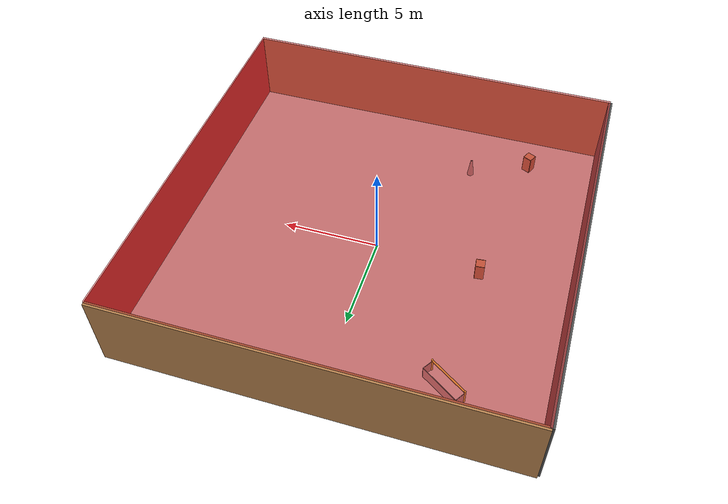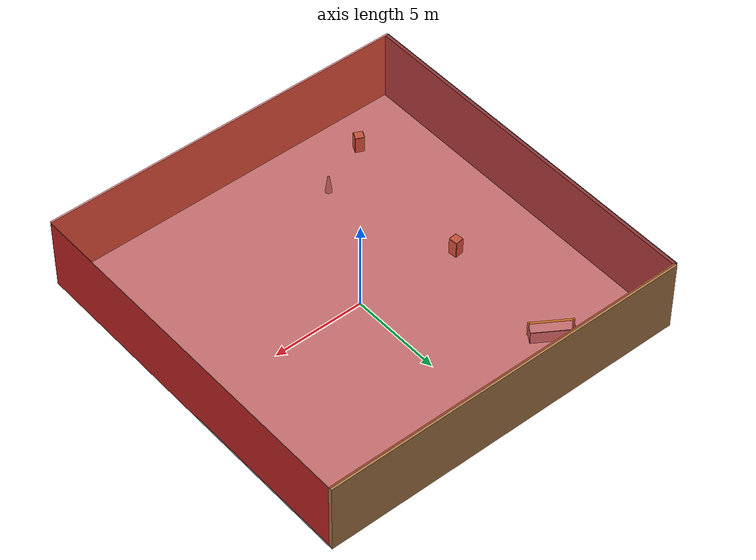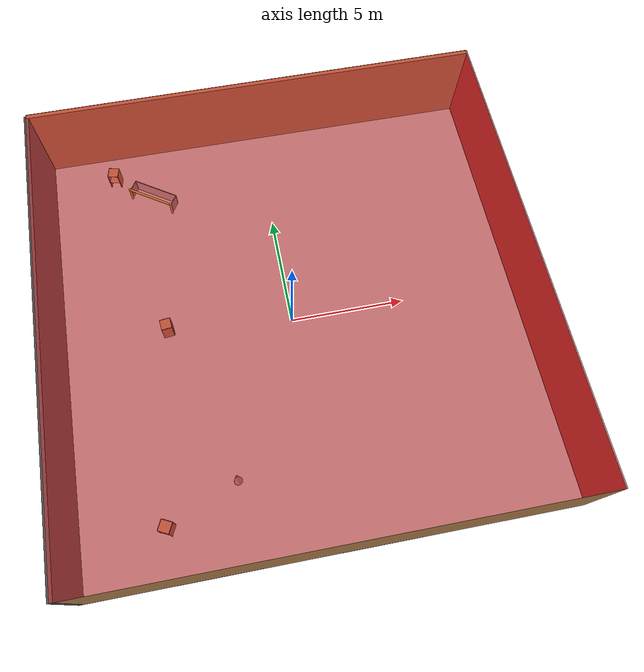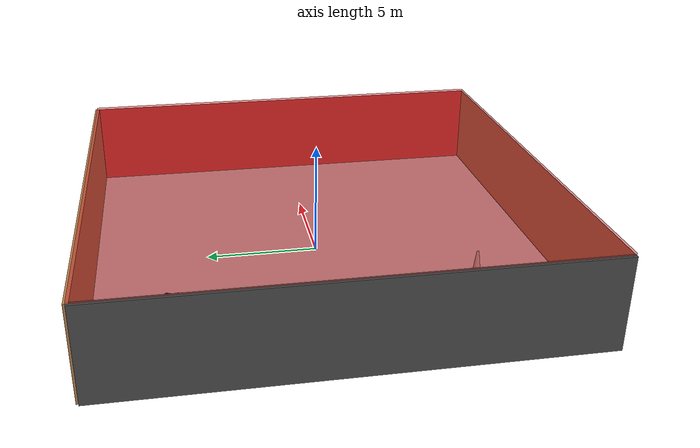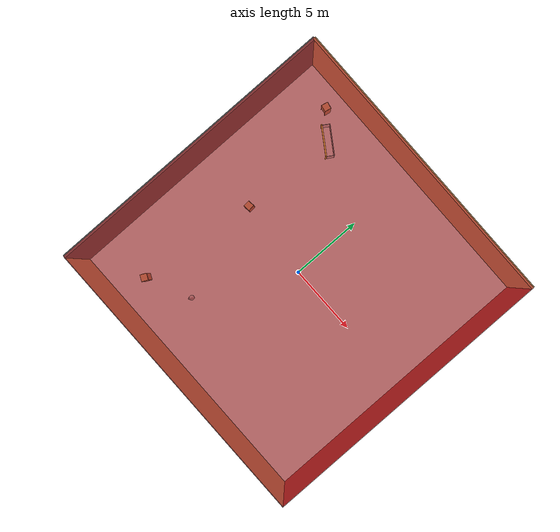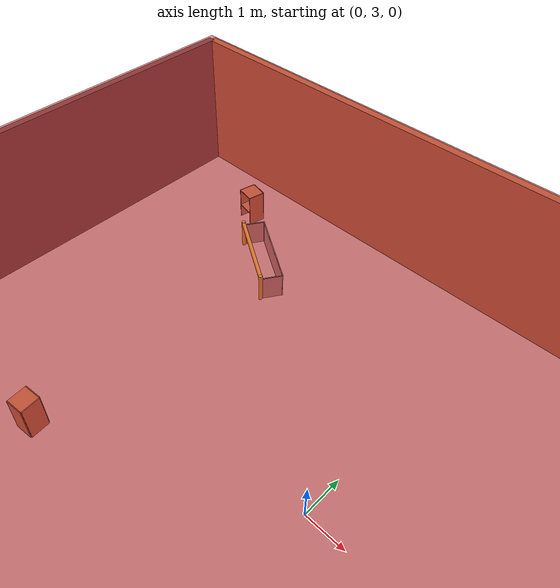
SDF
<sdf version="1.4">
 <world name="default">
  <physics type="ode">
   <max_step_size>0.001</max_step_size>
   <real_time_factor>1</real_time_factor>
   <real_time_update_rate>1000</real_time_update_rate>
   <gravity>0 0 -9.8</gravity>
  </physics>
  <scene><ambient>0.4 0.4 0.4 1</ambient><background>0.7 0.7 0.7 1</background><shadows>1</shadows></scene>
  <model name="Surrounding">
   <static>1</static>
   <link name="Ceiling">
    <collision name="Ceiling_Collision"><geometry><box><size>20 20 0.1</size></box></geometry></collision>
    <visual name="Ceiling_Visual">
     <geometry><box><size>20 20 0.1</size></box></geometry>
     <material>
      <script><uri>file://media/materials/scripts/gazebo.material</uri><name>Gazebo/RedTransparent</name></script>
     </material>
    </visual>
    <pose>0 0 4.05 0 0 0</pose>
   </link>
   <link name="Wall_South">
    <collision name="Wall_South_Collision">
     <geometry><box><size>20 0 4</size></box></geometry>
     <pose>0 0 2 0 -0 0</pose>
    </collision>
    <visual name="Wall_South_Visual">
     <pose>0 0 2 0 -0 0</pose>
     <geometry><box><size>20 0 4</size></box></geometry>
     <material>
      <script><uri>file://media/materials/scripts/gazebo.material</uri><name>Gazebo/WoodFloor</name></script>
     </material>
    </visual>
    <velocity_decay><linear>0</linear><angular>0</angular></velocity_decay>
    <pose>0 -10 0 0 -0 0</pose>
   </link>
   <link name="Wall_East">
    <collision name="Wall_21_Collision">
     <geometry><box><size>20 0 4</size></box></geometry>
     <pose>0 0 2 0 -0 0</pose>
    </collision>
    <visual name="Wall_21_Visual">
     <pose>0 0 2 0 -0 0</pose>
     <geometry><box><size>20 0 4</size></box></geometry>
     <material>
      <script><uri>file://media/materials/scripts/gazebo.material</uri><name>Gazebo/RedBright</name></script>
     </material>
    </visual>
    <velocity_decay><linear>0</linear><angular>0</angular></velocity_decay>
    <pose>10 0 0 0 -0 1.5708</pose>
   </link>
   <link name="Wall_North">
    <collision name="Wall_22_Collision">
     <geometry><box><size>20 0.2 4</size></box></geometry>
     <pose>0 0 2 0 -0 0</pose>
    </collision>
    <visual name="Wall_22_Visual">
     <pose>0 0 2 0 -0 0</pose>
     <geometry><box><size>20 0.2 4</size></box></geometry>
     <material>
      <script><uri>file://media/materials/scripts/gazebo.material</uri><name>Gazebo/Wood</name></script>
     </material>
    </visual>
    <velocity_decay><linear>0</linear><angular>0</angular></velocity_decay>
    <pose>0 10 0 0 -0 0</pose>
   </link>
   <link name="Wall_West">
    <collision name="Wall_23_Collision">
     <geometry><box><size>20 0.2 4</size></box></geometry>
     <pose>0 0 2 0 -0 0</pose>
    </collision>
    <visual name="Wall_23_Visual">
     <pose>0 0 2 0 -0 0</pose>
     <geometry><box><size>20 0.2 4</size></box></geometry>
     <material>
      <script><uri>file://media/materials/scripts/gazebo.material</uri><name>Gazebo/DarkGrey</name></script>
     </material>
    </visual>
    <velocity_decay><linear>0</linear><angular>0</angular></velocity_decay>
    <pose>-10 0 0 0 0 -1.5708</pose>
   </link>
   <link name="Ground_link">
    <collision name="collision">
     <pose>0 0 .05 0 -0 0</pose>
     <geometry><box><size>20 20 0.1</size></box></geometry>
    </collision>
    <visual name="visual">
     <pose>0 0 .05 0 -0 0</pose>
     <geometry><box><size>20 20 0.1</size></box></geometry>
     <material>
      <script><uri>file://media/materials/scripts/gazebo.material</uri><name>Gazebo/CloudySky</name></script>
     </material>
    </visual>
   </link>
   <static>1</static>
  </model>
  <spherical_coordinates>
   <surface_model>EARTH_WGS84</surface_model>
   <latitude_deg>0</latitude_deg>
   <longitude_deg>0</longitude_deg>
   <elevation>0</elevation>
   <heading_deg>0</heading_deg>
  </spherical_coordinates>
  <light name="lightball_0" type="diffuse">
   <diffuse>0.8 0.8 0.8 1</diffuse>
   <specular>0.2 0.2 0.2 1</specular>
   <attenuation>
    <range>100</range>
    <constant>0.7</constant>
    <linear>0.01</linear>
    <quadratic>0.001</quadratic>
   </attenuation>
   <direction>-0.5 0.1 -0.9</direction>
   <pose>5.66928397444 -2.61938215515 0.881267096336 0 0 0</pose>
  </light>
  <light name="lightball_1" type="diffuse">
   <diffuse>0.8 0.8 0.8 1</diffuse>
   <specular>0.2 0.2 0.2 1</specular>
   <attenuation>
    <range>100</range>
    <constant>0.7</constant>
    <linear>0.01</linear>
    <quadratic>0.001</quadratic>
   </attenuation>
   <direction>-0.5 0.1 -0.9</direction>
   <pose>6.72850904755 -2.55184697404 1.03825076336 0 0 0</pose>
  </light>
  <light name="lightball_2" type="diffuse">
   <diffuse>0.8 0.8 0.8 1</diffuse>
   <specular>0.2 0.2 0.2 1</specular>
   <attenuation>
    <range>100</range>
    <constant>0.7</constant>
    <linear>0.01</linear>
    <quadratic>0.001</quadratic>
   </attenuation>
   <direction>-0.5 0.1 -0.9</direction>
   <pose>-8.82940943683 -8.80291259471 0.756222798268 0 0 0</pose>
  </light>
  <light name="lightball_3" type="diffuse">
   <diffuse>0.8 0.8 0.8 1</diffuse>
   <specular>0.2 0.2 0.2 1</specular>
   <attenuation>
    <range>100</range>
    <constant>0.7</constant>
    <linear>0.01</linear>
    <quadratic>0.001</quadratic>
   </attenuation>
   <direction>-0.5 0.1 -0.9</direction>
   <pose>2.58843962625 -2.15880587521 0.920685556304 0 0 0</pose>
  </light>
  <light name="lightball_4" type="diffuse">
   <diffuse>0.8 0.8 0.8 1</diffuse>
   <specular>0.2 0.2 0.2 1</specular>
   <attenuation>
    <range>100</range>
    <constant>0.7</constant>
    <linear>0.01</linear>
    <quadratic>0.001</quadratic>
   </attenuation>
   <direction>-0.5 0.1 -0.9</direction>
   <pose>8.83759995187 6.66915155159 1.31868682403 0 0 0</pose>
  </light>
  <light name="lightball_5" type="diffuse">
   <diffuse>0.8 0.8 0.8 1</diffuse>
   <specular>0.2 0.2 0.2 1</specular>
   <attenuation>
    <range>100</range>
    <constant>0.7</constant>
    <linear>0.01</linear>
    <quadratic>0.001</quadratic>
   </attenuation>
   <direction>-0.5 0.1 -0.9</direction>
   <pose>3.97429792068 2.7946170263 1.03736095815 0 0 0</pose>
  </light>
  <light name="lightball_6" type="diffuse">
   <diffuse>0.8 0.8 0.8 1</diffuse>
   <specular>0.2 0.2 0.2 1</specular>
   <attenuation>
    <range>100</range>
    <constant>0.7</constant>
    <linear>0.01</linear>
    <quadratic>0.001</quadratic>
   </attenuation>
   <direction>-0.5 0.1 -0.9</direction>
   <pose>-9.69378249288 -5.68138526214 3.18142426886 0 0 0</pose>
  </light>
  <light name="lightball_7" type="diffuse">
   <diffuse>0.8 0.8 0.8 1</diffuse>
   <specular>0.2 0.2 0.2 1</specular>
   <attenuation>
    <range>100</range>
    <constant>0.7</constant>
    <linear>0.01</linear>
    <quadratic>0.001</quadratic>
   </attenuation>
   <direction>-0.5 0.1 -0.9</direction>
   <pose>-8.25709158932 -7.04654473502 1.60609354667 0 0 0</pose>
  </light>
  <light name="lightball_8" type="diffuse">
   <diffuse>0.8 0.8 0.8 1</diffuse>
   <specular>0.2 0.2 0.2 1</specular>
   <attenuation>
    <range>100</range>
    <constant>0.7</constant>
    <linear>0.01</linear>
    <quadratic>0.001</quadratic>
   </attenuation>
   <direction>-0.5 0.1 -0.9</direction>
   <pose>-3.18488973482 -5.53797861926 2.83564786187 0 0 0</pose>
  </light>
  <light name="lightball_9" type="diffuse">
   <diffuse>0.8 0.8 0.8 1</diffuse>
   <specular>0.2 0.2 0.2 1</specular>
   <attenuation>
    <range>100</range>
    <constant>0.7</constant>
    <linear>0.01</linear>
    <quadratic>0.001</quadratic>
   </attenuation>
   <direction>-0.5 0.1 -0.9</direction>
   <pose>7.79735086038 -8.89305048444 3.12622641134 0 0 0</pose>
  </light>
  <include><uri>model://cabinet</uri><pose>-6.43396596992 -7.87146251627 0 0 0 1.12043485024</pose></include>
  <include><uri>model://cabinet</uri><pose>-6.98338611431 8.51736760508 0 0 0 1.35642449966</pose></include>
  <include>
   <uri>model://construction_cone</uri>
   <pose>-3.44132101794 -6.53829937984 0 0 0 1.89431259585</pose>
  </include>
  <include><uri>model://cabinet</uri><pose>-5.45172493476 0.417147542321 0 0 0 0.106096960116</pose></include>
  <include>
   <uri>model://robocup_3Dsim_goal</uri>
   <pose>-5.44272220691 6.97748233638 0 0 0 0.994644474469</pose>
  </include>
 </world>
</sdf>

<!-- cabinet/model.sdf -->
<sdf version="1.5">
  <model name="cabinet">
    <static>true</static>
    <link name="cabinet_bottom_plate">
      <inertial>
        <pose>0 0 -1 0 0 0</pose>
        <inertia>
          <ixx>2.050000</ixx>
          <ixy>0</ixy>
          <ixz>0</ixz>
          <iyy>2.050000</iyy>
          <iyz>0</iyz>
          <izz>2.050000</izz>
        </inertia>
        <mass>25.000000</mass>
      </inertial>
      <collision name="cabinet_bottom_plate_geom">
        <pose>0 0 0.010000 0 0 0</pose>
        <geometry>
          <box>
            <size>0.450000 0.450000 0.020000</size>
          </box>
        </geometry>
      </collision>
      <visual name="cabinet_bottom_plate_geom_visual">
        <pose>0 0 0.010000 0 0 0</pose>
        <geometry>
          <box>
            <size>0.450000 0.450000 0.020000</size>
          </box>
        </geometry>
        <material>
          <script>
            <uri>model://media/materials/scripts/gazebo.material</uri>
            <name>Gazebo/Wood</name>
          </script>
        </material>
      </visual>
      <collision name="cabinet_bottom_plate_geom_cabinet_back_plate">
        <pose>0.235000 0 0.510000 0 0 0</pose>
        <geometry>
          <box>
            <size>0.020000 0.450000 1.020000</size>
          </box>
        </geometry>
      </collision>
      <visual name="cabinet_bottom_plate_geom_cabinet_back_plate_visual">
        <pose>0.235000 0 0.510000 0 0 0</pose>
        <geometry>
          <box>
            <size>0.020000 0.450000 1.020000</size>
          </box>
        </geometry>
        <material>
          <script>
            <uri>model://media/materials/scripts/gazebo.material</uri>
            <name>Gazebo/Wood</name>
          </script>
        </material>
      </visual>
      <collision name="cabinet_bottom_plate_geom_cabinet_left_plate">
        <pose>0 0.235000 0.510000 0 0 0</pose>
        <geometry>
          <box>
            <size>0.450000 0.020000 1.020000</size>
          </box>
        </geometry>
      </collision>
      <visual name="cabinet_bottom_plate_geom_cabinet_left_plate_visual">
        <pose>0 0.235000 0.510000 0 0 0</pose>
        <geometry>
          <box>
            <size>0.450000 0.020000 1.020000</size>
          </box>
        </geometry>
        <material>
          <script>
            <uri>model://media/materials/scripts/gazebo.material</uri>
            <name>Gazebo/Wood</name>
          </script>
        </material>
      </visual>
      <collision name="cabinet_bottom_plate_geom_cabinet_middle_plate">
        <pose>0 0 0.510000 0 0 0</pose>
        <geometry>
          <box>
            <size>0.450000 0.450000 0.020000</size>
          </box>
        </geometry>
      </collision>
      <visual name="cabinet_bottom_plate_geom_cabinet_middle_plate_visual">
        <pose>0 0 0.510000 0 0 0</pose>
        <geometry>
          <box>
            <size>0.450000 0.450000 0.020000</size>
          </box>
        </geometry>
        <material>
          <script>
            <uri>model://media/materials/scripts/gazebo.material</uri>
            <name>Gazebo/Wood</name>
          </script>
        </material>
      </visual>
      <collision name="cabinet_bottom_plate_geom_cabinet_right_plate">
        <pose>0 -0.235000 0.510000 0 0 0</pose>
        <geometry>
          <box>
            <size>0.450000 0.020000 1.020000</size>
          </box>
        </geometry>
      </collision>
      <visual name="cabinet_bottom_plate_geom_cabinet_right_plate_visual">
        <pose>0 -0.235000 0.510000 0 0 0</pose>
        <geometry>
          <box>
            <size>0.450000 0.020000 1.020000</size>
          </box>
        </geometry>
        <material>
          <script>
            <uri>model://media/materials/scripts/gazebo.material</uri>
            <name>Gazebo/Wood</name>
          </script>
        </material>
      </visual>
      <collision name="cabinet_bottom_plate_geom_cabinet_top_plate">
        <pose>0 0 1.010000 0 0 0</pose>
        <geometry>
          <box>
            <size>0.450000 0.450000 0.020000</size>
          </box>
        </geometry>
      </collision>
      <visual name="cabinet_bottom_plate_geom_cabinet_top_plate_visual">
        <pose>0 0 1.010000 0 0 0</pose>
        <geometry>
          <box>
            <size>0.450000 0.450000 0.020000</size>
          </box>
        </geometry>
        <material>
          <script>
            <uri>model://media/materials/scripts/gazebo.material</uri>
            <name>Gazebo/Wood</name>
          </script>
        </material>
      </visual>
    </link>
  </model>
</sdf>

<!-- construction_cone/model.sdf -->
<sdf version="1.5">
  <model name="Construction Cone">
    <link name="link">
      <collision name="collision">
        <geometry>
          <mesh>
            <scale>10 10 10</scale>
            <uri>file://isr-testbed/construction_cone/meshes/construction_cone.dae</uri>
          </mesh>
        </geometry>
      </collision>
      <visual name="visual">
        <geometry>
          <mesh>
            <scale>10 10 10</scale>
            <uri>file://isr-testbed/construction_cone/meshes/construction_cone.dae</uri>
          </mesh>
        </geometry>
      </visual>
    </link>
  </model>
</sdf>

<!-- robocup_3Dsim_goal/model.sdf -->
<sdf version="1.5">
  <model name="robocup_3d_goal">
    <static>true</static>
    <link name="left_post">
      <pose>0 1.05 0.45 0 0 0</pose>
      <collision name="collision">
        <geometry>
          <cylinder>
            <radius>0.05</radius>
            <length>0.9</length>
          </cylinder>
        </geometry>
      </collision>
      <visual name="visual">
        <geometry>
          <cylinder>
            <radius>0.05</radius>
            <length>0.9</length>
          </cylinder>
        </geometry>
        <material>
          <script>
            <uri>file://media/materials/scripts/gazebo.material</uri>
            <name>Gazebo/ZincYellow</name>
          </script>
        </material>
      </visual>
    </link>
    <link name="left_support_horiz_lower">
      <pose>0.30 1.05 0.01 0 0 0</pose>
      <collision name="collision">
        <geometry>
          <box>
            <size>0.50 0.02 0.02</size>
          </box>
        </geometry>
      </collision>
      <visual name="visual">
        <geometry>
          <box>
            <size>0.50 0.02 0.02</size>
          </box>
        </geometry>
        <material>
          <script>
            <uri>file://media/materials/scripts/gazebo.material</uri>
            <name>Gazebo/White</name>
          </script>
        </material>
      </visual>
    </link>
    <link name="left_support_horiz_upper">
      <pose>0.30 1.05 0.79 0 0 0</pose>
      <collision name="collision">
        <geometry>
          <box>
            <size>0.50 0.02 0.02</size>
          </box>
        </geometry>
      </collision>
      <visual name="visual">
        <geometry>
          <box>
            <size>0.50 0.02 0.02</size>
          </box>
        </geometry>
        <material>
          <script>
            <uri>file://media/materials/scripts/gazebo.material</uri>
            <name>Gazebo/White</name>
          </script>
        </material>
      </visual>
    </link>
    <link name="left_support_vertical">
      <pose>0.56 1.05 0.4 0 1.5708 0</pose>
      <collision name="collision">
        <geometry>
          <box>
            <size>0.80 0.02 0.02</size>
          </box>
        </geometry>
      </collision>
      <visual name="visual">
        <geometry>
          <box>
            <size>0.80 0.02 0.02</size>
          </box>
        </geometry>
        <material>
          <script>
            <uri>file://media/materials/scripts/gazebo.material</uri>
            <name>Gazebo/White</name>
          </script>
        </material>
      </visual>
    </link>
    <link name="right_support_horiz_lower">
      <pose>0.30 -1.05 0.01 0 0 0</pose>
      <collision name="collision">
        <geometry>
          <box>
            <size>0.50 0.02 0.02</size>
          </box>
        </geometry>
      </collision>
      <visual name="visual">
        <geometry>
          <box>
            <size>0.50 0.02 0.02</size>
          </box>
        </geometry>
        <material>
          <script>
            <uri>file://media/materials/scripts/gazebo.material</uri>
            <name>Gazebo/White</name>
          </script>
        </material>
      </visual>
    </link>
    <link name="right_support_horiz_upper">
      <pose>0.30 -1.05 0.79 0 0 0</pose>
      <collision name="collision">
        <geometry>
          <box>
            <size>0.50 0.02 0.02</size>
          </box>
        </geometry>
      </collision>
      <visual name="visual">
        <geometry>
          <box>
            <size>0.50 0.02 0.02</size>
          </box>
        </geometry>
        <material>
          <script>
            <uri>file://media/materials/scripts/gazebo.material</uri>
            <name>Gazebo/White</name>
          </script>
        </material>
      </visual>
    </link>
    <link name="right_support_vertical">
      <pose>0.56 -1.05 0.4 0 1.5708 0</pose>
      <collision name="collision">
        <geometry>
          <box>
            <size>0.80 0.02 0.02</size>
          </box>
        </geometry>
      </collision>
      <visual name="visual">
        <geometry>
          <box>
            <size>0.80 0.02 0.02</size>
          </box>
        </geometry>
        <material>
          <script>
            <uri>file://media/materials/scripts/gazebo.material</uri>
            <name>Gazebo/White</name>
          </script>
        </material>
      </visual>
    </link>
    <link name="center_support_horiz_lower">
      <pose>0.56 0 0.01 0 1.5708 0</pose>
      <collision name="collision">
        <geometry>
          <box>
            <size>0.02 2.08 0.02</size>
          </box>
        </geometry>
      </collision>
      <visual name="visual">
        <geometry>
          <box>
            <size>0.02 2.08 0.02</size>
          </box>
        </geometry>
        <material>
          <script>
            <uri>file://media/materials/scripts/gazebo.material</uri>
            <name>Gazebo/White</name>
          </script>
        </material>
      </visual>
    </link>
    <link name="center_support_horiz_upper">
      <pose>0.56 0 0.79 0 1.5708 0</pose>
      <collision name="collision">
        <geometry>
          <box>
            <size>0.02 2.08 0.02</size>
          </box>
        </geometry>
      </collision>
      <visual name="visual">
        <geometry>
          <box>
            <size>0.02 2.08 0.02</size>
          </box>
        </geometry>
        <material>
          <script>
            <uri>file://media/materials/scripts/gazebo.material</uri>
            <name>Gazebo/White</name>
          </script>
        </material>
      </visual>
    </link>
    <link name="right_post">
      <pose>0 -1.05 0.45 0 0 0</pose>
      <collision name="collision">
        <geometry>
          <cylinder>
            <radius>0.05</radius>
            <length>0.9</length>
          </cylinder>
        </geometry>
      </collision>
      <visual name="visual">
        <geometry>
          <cylinder>
            <radius>0.05</radius>
            <length>0.9</length>
          </cylinder>
        </geometry>
        <material>
          <script>
            <uri>file://media/materials/scripts/gazebo.material</uri>
            <name>Gazebo/ZincYellow</name>
          </script>
        </material>
      </visual>
    </link>
    <link name="crossbar">
      <pose>0 0 0.85 1.57 1.57 0</pose>
      <collision name="collision">
        <geometry>
          <cylinder>
            <radius>0.05</radius>
            <length>2.0</length>
          </cylinder>
        </geometry>
      </collision>
      <visual name="visual">
        <geometry>
          <cylinder>
            <radius>0.05</radius>
            <length>2.0</length>
          </cylinder>
        </geometry>
        <material>
          <script>
            <uri>file://media/materials/scripts/gazebo.material</uri>
            <name>Gazebo/ZincYellow</name>
          </script>
        </material>
      </visual>
    </link>
    <link name="center_net">
      <pose>0.56 0 0.40 0 0 0</pose>
      <collision name="collision">
        <geometry>
          <box>
            <size>0.01 2.1 0.80</size>
          </box>
        </geometry>
      </collision>
      <visual name="visual">
        <geometry>
          <box>
            <size>0.01 2.1 0.80</size>
          </box>
        </geometry>
        <material>
          <script>
            <uri>model://../model_source/models/robocup09_spl_field/materials/scripts/</uri>
            <uri>model://../model_source/models/robocup09_spl_field/materials/textures/</uri>
            <name>RoboCup/Net</name>
          </script>
        </material>
      </visual>
    </link>
    <link name="left_net">
      <pose>0.30 1.05 0.40 0 0 0</pose>
      <collision name="collision">
        <geometry>
          <box>
            <size>0.50 0.01 0.76</size>
          </box>
        </geometry>
      </collision>
      <visual name="visual">
        <geometry>
          <box>
            <size>0.50 0.01 0.76</size>
          </box>
        </geometry>
        <material>
          <script>
            <uri>model://../model_source/models/robocup09_spl_field/materials/scripts/</uri>
            <uri>model://../model_source/models/robocup09_spl_field/materials/textures/</uri>
            <name>RoboCup/Net</name>
          </script>
        </material>
      </visual>
    </link>
    <link name="right_net">
      <pose>0.30 -1.05 0.40 0 0 0</pose>
      <collision name="collision">
        <geometry>
          <box>
            <size>0.50 0.01 0.76</size>
          </box>
        </geometry>
      </collision>
      <visual name="visual">
        <geometry>
          <box>
            <size>0.50 0.01 0.76</size>
          </box>
        </geometry>
        <material>
          <script>
            <uri>model://../model_source/models/robocup09_spl_field/materials/scripts/</uri>
            <uri>model://../model_source/models/robocup09_spl_field/materials/textures/</uri>
            <name>RoboCup/Net</name>
          </script>
        </material>
      </visual>
    </link>
  </model>
</sdf>
